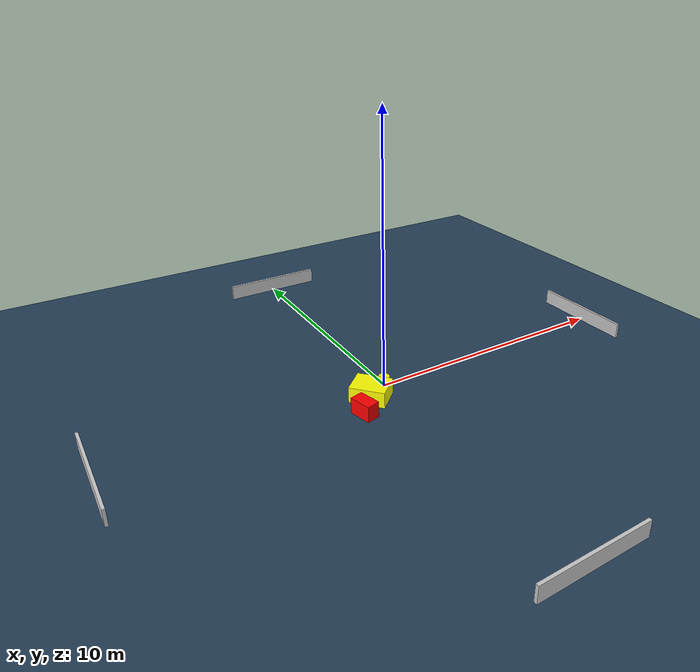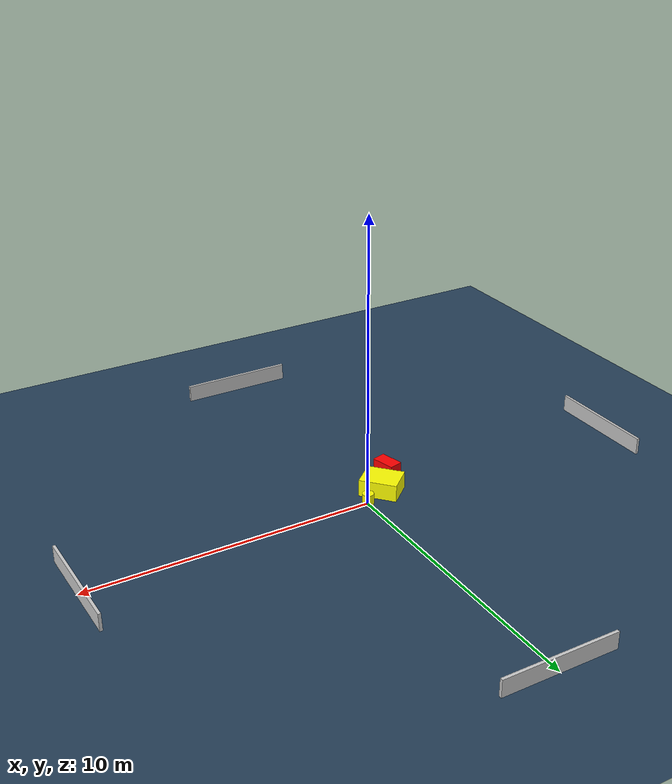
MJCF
<?xml version="1.0" ?>
<mujoco model="generated_environment">
  <option timestep="0.01" integrator="RK4" cone="elliptic"/>
  <default>
    <geom density="1"/>
  </default>
  <asset>
    <texture builtin="gradient" height="3072" name="skybox" rgb1="0.3 0.5 0.7" rgb2="0 0 0" type="skybox" width="512"/>
    <texture builtin="checker" height="300" name="groundplane" rgb1="0.2 0.3 0.4" rgb2="0.1 0.2 0.3" type="2d" width="300"/>
    <material name="groundplane" reflectance="0.2" texrepeat="5 5" texture="groundplane"/>
  </asset>
  <worldbody>
    <light dir="0 0 -1" directional="true" pos="0 0 1.5"/>
    <geom condim="3" friction="0.5 0.005 0.001" material="groundplane" name="floor" pos="0 0 0" size="0 0 0.05" type="plane"/>
    <body name="walls">
      <geom name="wall_1" condim="4" pos="-10.0 0.0 0.3" rgba="0.800000011920929 0.800000011920929 0.800000011920929 1.0" size="0.05 2.0 0.3" type="box"/>
      <geom name="wall_2" condim="4" pos="10.0 0.0 0.3" rgba="0.800000011920929 0.800000011920929 0.800000011920929 1.0" size="0.05 2.0 0.3" type="box"/>
      <geom name="wall_3" condim="4" pos="0.0 -10.0 0.3" rgba="0.800000011920929 0.800000011920929 0.800000011920929 1.0" size="2.0 0.05 0.3" type="box"/>
      <geom name="wall_4" condim="4" pos="0.0 10.0 0.3" rgba="0.800000011920929 0.800000011920929 0.800000011920929 1.0" size="2.0 0.05 0.3" type="box"/>
    </body>
    <body name="robot">
      <joint name="joint_x" type="slide" pos="0 0 0" axis="1 0 0"/>
      <joint name="joint_y" type="slide" pos="0 0 0" axis="0 1 0"/>
      <geom name="robot" type="cylinder" pos="0.0 0.0 0.2" size="0.2 0.2 0.0" mass="5.0" friction="1.0 0.005 0.0001" condim="4" rgba="1.0 1.0 0.0 1.0"/>
    </body>
    <body name="obstacle_1_movable">
      <geom name="obstacle_1_movable" condim="4" pos="-0.8073399372600294 -0.435022718466175 0.3" euler="0 0 41.52282296971301" friction="0.0 0.005 0.001" rgba="1.0 1.0 0.0 1.0" size="0.5100515394246046 0.6544033803989193 0.3" type="box" mass="0.1"/>
      <joint type="free"/>
    </body>
    <body name="obstacle_2_static">
      <geom name="obstacle_2_static" condim="4" pos="-1.5160678976444903 -1.2269426009398159 0.3" euler="0 0 14.281171977673015" friction="0.0 0.005 0.001" rgba="1.0 0.0 0.0 1.0" size="0.24486483394257097 0.4216641251431172 0.3" type="box"/>
    </body>
  </worldbody>
  <actuator>
    <motor name="actuator_x" joint="joint_x" gear="1" ctrlrange="-1 1"/>
    <motor name="actuator_y" joint="joint_y" gear="1" ctrlrange="-1 1"/>
  </actuator>
</mujoco>
